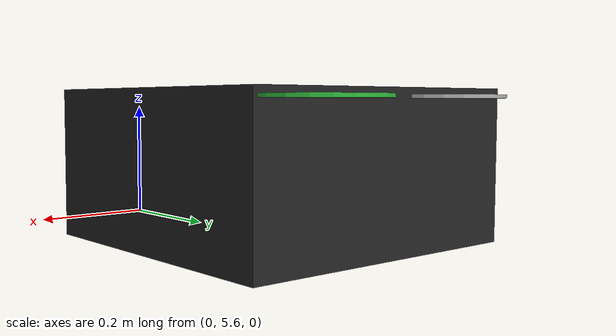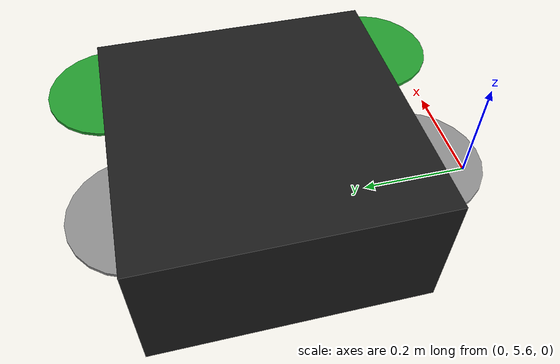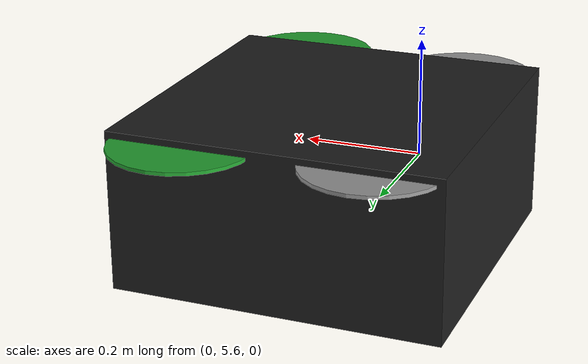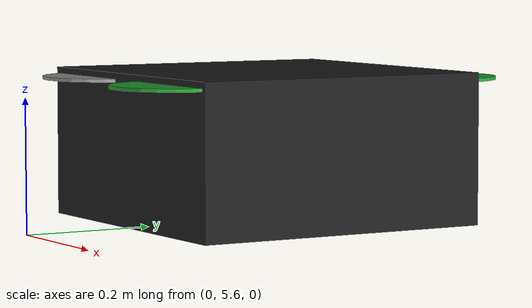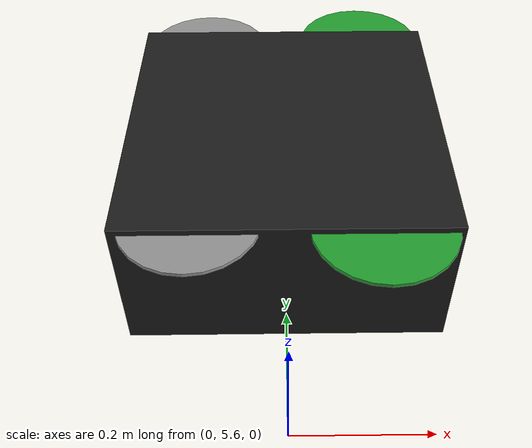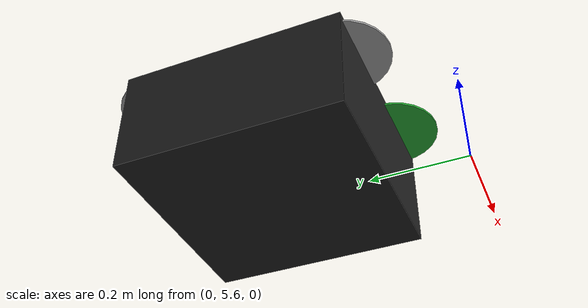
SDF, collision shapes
<?xml version='1.0'?>
<sdf version='1.5'>
  <model name='iris-4'>
    <pose>0 6 0.194923 0 0 0</pose>
    <link name='iris-4-base_link'>
      <velocity_decay>
        <linear>0.0</linear>
        <angular>0.0</angular>
      </velocity_decay>
      <inertial>
        <pose>0 0 0 0 0 0</pose>
        <mass>1.5</mass>
        <inertia>
          <ixx>0.008</ixx>
          <ixy>0</ixy>
          <ixz>0</ixz>
          <iyy>0.015</iyy>
          <iyz>0</iyz>
          <izz>0.017</izz>
        </inertia>
      </inertial>
      <collision name='iris-4-base_link_collision'>
        <pose>0 0 -0.08 0 0 0</pose>
        <geometry>
          <box>
            <size>0.47 0.47 0.23</size>
          </box>
        </geometry>
        <surface>
          <contact>
            <ode>
              <max_vel>100.0</max_vel>
              <min_depth>0.001</min_depth>
            </ode>
          </contact>
          <friction>
            <ode>
              <mu>100000.0</mu>
              <mu2>100000.0</mu2>
            </ode>
          </friction>
        </surface>
      </collision>
      <visual name='iris-4-base_link_visual'>
        <geometry>
          <mesh>
            <uri>model://formation/vehicle4/iris/meshes/iris.dae</uri>
          </mesh>
        </geometry>
        <material>
          <script>
            <name>Gazebo/Black</name>
          </script>
        </material>
      </visual>

      <visual name='iris-4-front_left_leg_visual'>
        <pose>0.123 0.22 -0.11 0 0 0</pose>
        <geometry>
          <cylinder>
            <radius>0.005</radius>
            <length>0.17</length>
          </cylinder>
        </geometry>
        <material>
          <script>
            <name>Gazebo/FlatBlack</name>
            <uri>file://media/materials/scripts/gazebo.material</uri>
          </script>
        </material>
      </visual>
      <visual name='iris-4-front_right_leg_visual'>
        <pose>0.123 -0.22 -0.11 0 0 0</pose>
        <geometry>
          <cylinder>
            <radius>0.005</radius>
            <length>0.17</length>
          </cylinder>
        </geometry>
        <material>
          <script>
            <name>Gazebo/FlatBlack</name>
            <uri>file://media/materials/scripts/gazebo.material</uri>
          </script>
        </material>
      </visual>
      <visual name='iris-4-rear_left_leg_visual'>
        <pose>-0.140 0.21 -0.11 0 0 0</pose>
        <geometry>
          <cylinder>
            <radius>0.005</radius>
            <length>0.17</length>
          </cylinder>
        </geometry>
        <material>
          <script>
            <name>Gazebo/FlatBlack</name>
            <uri>file://media/materials/scripts/gazebo.material</uri>
          </script>
        </material>
      </visual>
      <visual name='iris-4-rear_right_leg_visual'>
        <pose>-0.140 -0.21 -0.11 0 0 0</pose>
        <geometry>
          <cylinder>
            <radius>0.005</radius>
            <length>0.17</length>
          </cylinder>
        </geometry>
        <material>
          <script>
            <name>Gazebo/FlatBlack</name>
            <uri>file://media/materials/scripts/gazebo.material</uri>
          </script>
        </material>
      </visual>
    </link>
    <link name='iris-4/ground_truth/odometry_sensorgt_link'>
      <pose>0 0 0 0 -0 0</pose>
      <inertial>
        <pose>0 0 0 0 -0 0</pose>
        <mass>0.15</mass>
        <inertia>
          <ixx>0.0001</ixx>
          <ixy>0</ixy>
          <ixz>0</ixz>
          <iyy>0.0002</iyy>
          <iyz>0</iyz>
          <izz>0.0002</izz>
        </inertia>
      </inertial>
    </link>
    <joint name='iris-4/ground_truth/odometry_sensorgt_joint' type='revolute'>
      <child>iris-4/ground_truth/odometry_sensorgt_link</child>
      <parent>iris-4-base_link</parent>
      <axis>
        <xyz>0 0 1</xyz>
        <limit>
          <lower>0</lower>
          <upper>0</upper>
          <effort>0</effort>
          <velocity>0</velocity>
        </limit>
        <dynamics>
          <damping>1.0</damping>
        </dynamics>
        <use_parent_model_frame>1</use_parent_model_frame>
      </axis>
      <physics>
        <ode>
          <implicit_spring_damper>1</implicit_spring_damper>
        </ode>
      </physics>
    </joint>
    <link name='iris-4/imu_link'>
      <inertial>
        <pose>0 0 0 0 0 0</pose>
        <mass>0.15</mass>
        <inertia>
          <ixx>0.00001</ixx>
          <ixy>0</ixy>
          <ixz>0</ixz>
          <iyy>0.00002</iyy>
          <iyz>0</iyz>
          <izz>0.00002</izz>
        </inertia>
      </inertial>
      <sensor name="iris-4-imu_sensor" type="imu">
        <pose>0 0 0 3.141593 0 0</pose>
        <always_on>1</always_on>
        <update_rate>1000.0</update_rate>
      </sensor>
    </link>
    <joint name='iris-4/imu_joint' type='revolute'>
      <child>iris-4/imu_link</child>
      <parent>iris-4-base_link</parent>
      <axis>
        <xyz>0 0 1</xyz>
        <limit>
          <lower>0</lower>
          <upper>0</upper>
          <effort>0</effort>
          <velocity>0</velocity>
        </limit>
        <dynamics>
          <damping>1.0</damping>
        </dynamics>
        <use_parent_model_frame>1</use_parent_model_frame>
      </axis>
      <physics>
        <ode>
          <implicit_spring_damper>1</implicit_spring_damper>
        </ode>
      </physics>
    </joint>
    <link name='iris-4-rotor_0'>
      <pose>0.13 -0.22 0.023 0 -0 0</pose>
      <inertial>
        <pose>0 0 0 0 -0 0</pose>
        <mass>0.025</mass>
        <inertia>
          <ixx>9.75e-06</ixx>
          <ixy>0</ixy>
          <ixz>0</ixz>
          <iyy>0.000166704</iyy>
          <iyz>0</iyz>
          <izz>0.000167604</izz>
        </inertia>
      </inertial>
      <collision name='iris-4-rotor_0_collision'>
        <pose>0 0 0 0 -0 0</pose>
        <geometry>
          <cylinder>
            <length>0.005</length>
            <radius>0.1</radius>
          </cylinder>
        </geometry>
        <surface>
          <contact>
            <ode/>
          </contact>
          <friction>
            <ode/>
          </friction>
        </surface>
      </collision>
      <visual name='iris-4-rotor_0_visual'>
        <pose>0 0 0 0 -0 0</pose>
        <geometry>
          <mesh>
            <scale>1 1 1</scale>
            <uri>model://formation/vehicle4/iris/meshes/iris_prop_ccw.dae</uri>
          </mesh>
        </geometry>
        <material>
          <script>
            <name>Gazebo/Green</name>
            <uri>__default__</uri>
          </script>
        </material>
      </visual>
      <gravity>1</gravity>
      <velocity_decay/>
      <self_collide>0</self_collide>
    </link>
    <joint name='iris-4-rotor_0_joint' type='revolute'>
      <child>iris-4-rotor_0</child>
      <parent>iris-4-base_link</parent>
      <axis>
        <xyz>0 0 1</xyz>
        <limit>
          <lower>-1e+16</lower>
          <upper>1e+16</upper>
        </limit>
        <dynamics>
          <damping>0.004</damping>
        </dynamics>
        <use_parent_model_frame>1</use_parent_model_frame>
      </axis>
      <physics>
        <ode>
          <implicit_spring_damper>1</implicit_spring_damper>
        </ode>
      </physics>
    </joint>
    <link name='iris-4-rotor_1'>
      <pose>-0.13 0.2 0.023 0 -0 0</pose>
      <inertial>
        <pose>0 0 0 0 -0 0</pose>
        <mass>0.025</mass>
        <inertia>
          <ixx>9.75e-06</ixx>
          <ixy>0</ixy>
          <ixz>0</ixz>
          <iyy>0.000166704</iyy>
          <iyz>0</iyz>
          <izz>0.000167604</izz>
        </inertia>
      </inertial>
      <collision name='iris-4-rotor_1_collision'>
        <pose>0 0 0 0 -0 0</pose>
        <geometry>
          <cylinder>
            <length>0.005</length>
            <radius>0.1</radius>
          </cylinder>
        </geometry>
        <surface>
          <contact>
            <ode/>
          </contact>
          <friction>
            <ode/>
          </friction>
        </surface>
      </collision>
      <visual name='iris-4-rotor_1_visual'>
        <pose>0 0 0 0 -0 0</pose>
        <geometry>
          <mesh>
            <scale>1 1 1</scale>
            <uri>model://formation/vehicle4/iris/meshes/iris_prop_ccw.dae</uri>
          </mesh>
        </geometry>
        <material>
          <script>
            <name>Gazebo/Grey</name>
            <uri>__default__</uri>
          </script>
        </material>
      </visual>
      <gravity>1</gravity>
      <velocity_decay/>
      <self_collide>0</self_collide>
    </link>
    <joint name='iris-4-rotor_1_joint' type='revolute'>
      <child>iris-4-rotor_1</child>
      <parent>iris-4-base_link</parent>
      <axis>
        <xyz>0 0 1</xyz>
        <limit>
          <lower>-1e+16</lower>
          <upper>1e+16</upper>
        </limit>
        <dynamics>
          <damping>0.004</damping>
        </dynamics>
        <use_parent_model_frame>1</use_parent_model_frame>
      </axis>
      <physics>
        <ode>
          <implicit_spring_damper>1</implicit_spring_damper>
        </ode>
      </physics>
    </joint>
    <link name='iris-4-rotor_2'>
      <pose>0.13 0.22 0.023 0 -0 0</pose>
      <inertial>
        <pose>0 0 0 0 -0 0</pose>
        <mass>0.025</mass>
        <inertia>
          <ixx>9.75e-06</ixx>
          <ixy>0</ixy>
          <ixz>0</ixz>
          <iyy>0.000166704</iyy>
          <iyz>0</iyz>
          <izz>0.000167604</izz>
        </inertia>
      </inertial>
      <collision name='iris-4-rotor_2_collision'>
        <pose>0 0 0 0 -0 0</pose>
        <geometry>
          <cylinder>
            <length>0.005</length>
            <radius>0.1</radius>
          </cylinder>
        </geometry>
        <surface>
          <contact>
            <ode/>
          </contact>
          <friction>
            <ode/>
          </friction>
        </surface>
      </collision>
      <visual name='iris-4-rotor_2_visual'>
        <pose>0 0 0 0 -0 0</pose>
        <geometry>
          <mesh>
            <scale>1 1 1</scale>
            <uri>model://formation/vehicle4/iris/meshes/iris_prop_cw.dae</uri>
          </mesh>
        </geometry>
        <material>
          <script>
            <name>Gazebo/Green</name>
            <uri>__default__</uri>
          </script>
        </material>
      </visual>
      <gravity>1</gravity>
      <velocity_decay/>
      <self_collide>0</self_collide>
    </link>
    <joint name='iris-4-rotor_2_joint' type='revolute'>
      <child>iris-4-rotor_2</child>
      <parent>iris-4-base_link</parent>
      <axis>
        <xyz>0 0 1</xyz>
        <limit>
          <lower>-1e+16</lower>
          <upper>1e+16</upper>
        </limit>
        <dynamics>
          <damping>0.004</damping>
        </dynamics>
        <use_parent_model_frame>1</use_parent_model_frame>
      </axis>
      <physics>
        <ode>
          <implicit_spring_damper>1</implicit_spring_damper>
        </ode>
      </physics>
    </joint>
    <link name='iris-4-rotor_3'>
      <pose>-0.13 -0.2 0.023 0 -0 0</pose>
      <inertial>
        <pose>0 0 0 0 -0 0</pose>
        <mass>0.025</mass>
        <inertia>
          <ixx>9.75e-06</ixx>
          <ixy>0</ixy>
          <ixz>0</ixz>
          <iyy>0.000166704</iyy>
          <iyz>0</iyz>
          <izz>0.000167604</izz>
        </inertia>
      </inertial>
      <collision name='iris-4-rotor_3_collision'>
        <pose>0 0 0 0 -0 0</pose>
        <geometry>
          <cylinder>
            <length>0.005</length>
            <radius>0.1</radius>
          </cylinder>
        </geometry>
        <surface>
          <contact>
            <ode/>
          </contact>
          <friction>
            <ode/>
          </friction>
        </surface>
      </collision>
      <visual name='iris-4-rotor_3_visual'>
        <pose>0 0 0 0 -0 0</pose>
        <geometry>
          <mesh>
            <scale>1 1 1</scale>
            <uri>model://formation/vehicle4/iris/meshes/iris_prop_cw.dae</uri>
          </mesh>
        </geometry>
        <material>
          <script>
            <name>Gazebo/Grey</name>
            <uri>__default__</uri>
          </script>
        </material>
      </visual>
      <gravity>1</gravity>
      <velocity_decay/>
      <self_collide>0</self_collide>
    </link>
    <joint name='iris-4-rotor_3_joint' type='revolute'>
      <child>iris-4-rotor_3</child>
      <parent>iris-4-base_link</parent>
      <axis>
        <xyz>0 0 1</xyz>
        <limit>
          <lower>-1e+16</lower>
          <upper>1e+16</upper>
        </limit>
        <dynamics>
          <damping>0.004</damping>
        </dynamics>
        <use_parent_model_frame>1</use_parent_model_frame>
      </axis>
      <physics>
        <ode>
          <implicit_spring_damper>1</implicit_spring_damper>
        </ode>
      </physics>
    </joint>
    <static>0</static>
  </model>
</sdf>
